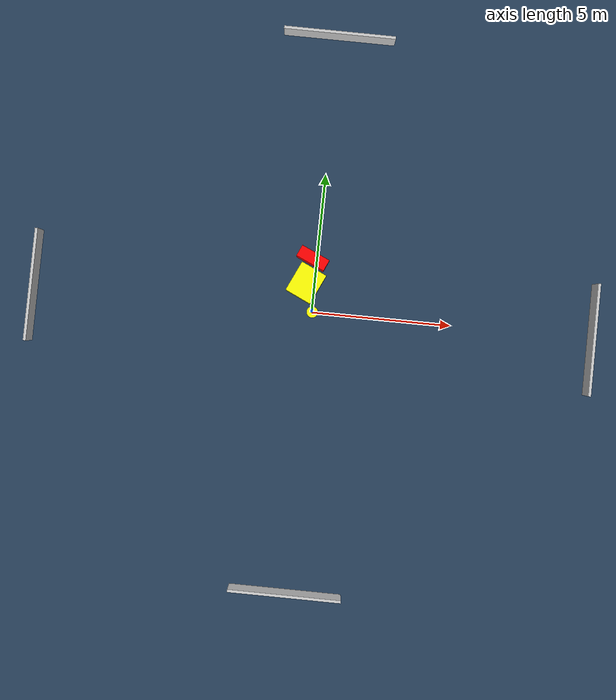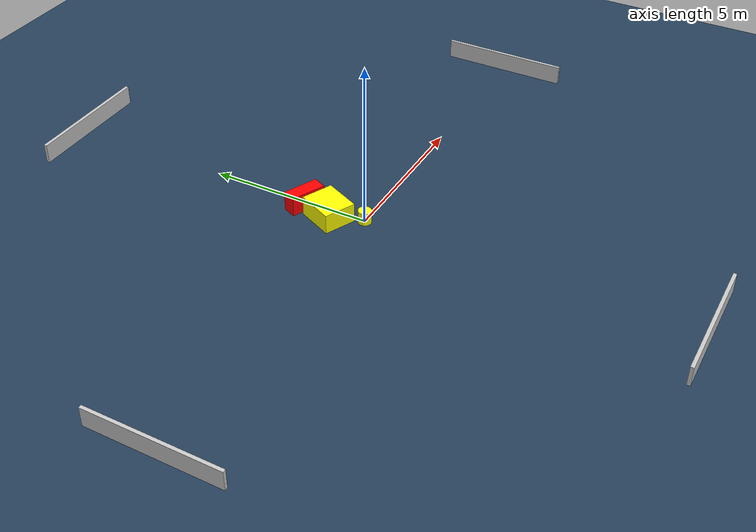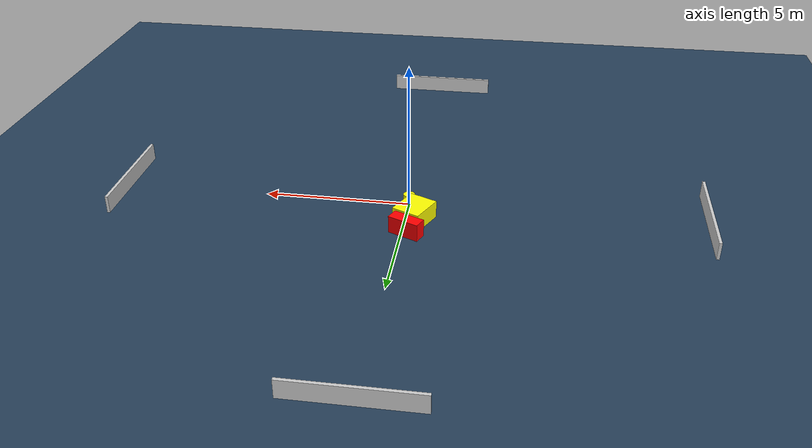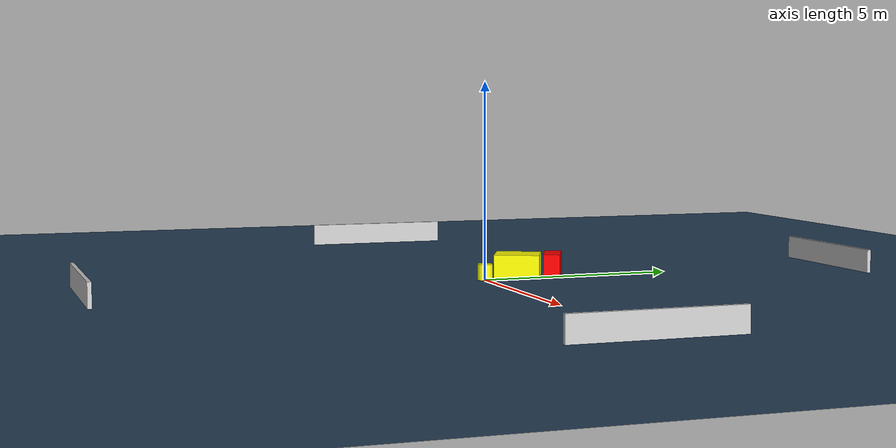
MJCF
<?xml version="1.0" ?>
<mujoco model="generated_environment">
  <option timestep="0.01" integrator="RK4" cone="elliptic"/>
  <default>
    <geom density="1"/>
  </default>
  <asset>
    <texture builtin="gradient" height="3072" name="skybox" rgb1="0.3 0.5 0.7" rgb2="0 0 0" type="skybox" width="512"/>
    <texture builtin="checker" height="300" name="groundplane" rgb1="0.2 0.3 0.4" rgb2="0.1 0.2 0.3" type="2d" width="300"/>
    <material name="groundplane" reflectance="0.2" texrepeat="5 5" texture="groundplane"/>
  </asset>
  <worldbody>
    <light dir="0 0 -1" directional="true" pos="0 0 1.5"/>
    <geom condim="3" friction="0.5 0.005 0.001" material="groundplane" name="floor" pos="0 0 0" size="0 0 0.05" type="plane"/>
    <body name="walls">
      <geom name="wall_1" condim="4" pos="-10.0 0.0 0.3" rgba="0.800000011920929 0.800000011920929 0.800000011920929 1.0" size="0.05 2.0 0.3" type="box"/>
      <geom name="wall_2" condim="4" pos="10.0 0.0 0.3" rgba="0.800000011920929 0.800000011920929 0.800000011920929 1.0" size="0.05 2.0 0.3" type="box"/>
      <geom name="wall_3" condim="4" pos="0.0 -10.0 0.3" rgba="0.800000011920929 0.800000011920929 0.800000011920929 1.0" size="2.0 0.05 0.3" type="box"/>
      <geom name="wall_4" condim="4" pos="0.0 10.0 0.3" rgba="0.800000011920929 0.800000011920929 0.800000011920929 1.0" size="2.0 0.05 0.3" type="box"/>
    </body>
    <body name="robot">
      <joint name="joint_x" type="slide" pos="0 0 0" axis="1 0 0"/>
      <joint name="joint_y" type="slide" pos="0 0 0" axis="0 1 0"/>
      <geom name="robot" type="cylinder" pos="0.0 0.0 0.2" size="0.2 0.2 0.0" mass="5.0" friction="1.0 0.005 0.0001" condim="4" rgba="1.0 1.0 0.0 1.0"/>
    </body>
    <body name="obstacle_1_movable">
      <geom name="obstacle_1_movable" condim="4" pos="-0.3206408941917256 1.0082094921837756 0.3" euler="0 0 155.19924215863793" friction="0.0 0.005 0.001" rgba="1.0 1.0 0.0 1.0" size="0.4957617931430534 0.576139115145887 0.3" type="box" mass="0.1"/>
      <joint type="free"/>
    </body>
    <body name="obstacle_2_static">
      <geom name="obstacle_2_static" condim="4" pos="-0.1638758699431611 1.9044851566704084 0.3" euler="0 0 155.86208526379033" friction="0.0 0.005 0.001" rgba="1.0 0.0 0.0 1.0" size="0.5483984932399978 0.2137657255839811 0.3" type="box"/>
    </body>
  </worldbody>
  <actuator>
    <motor name="actuator_x" joint="joint_x" gear="1" ctrlrange="-1 1"/>
    <motor name="actuator_y" joint="joint_y" gear="1" ctrlrange="-1 1"/>
  </actuator>
</mujoco>
